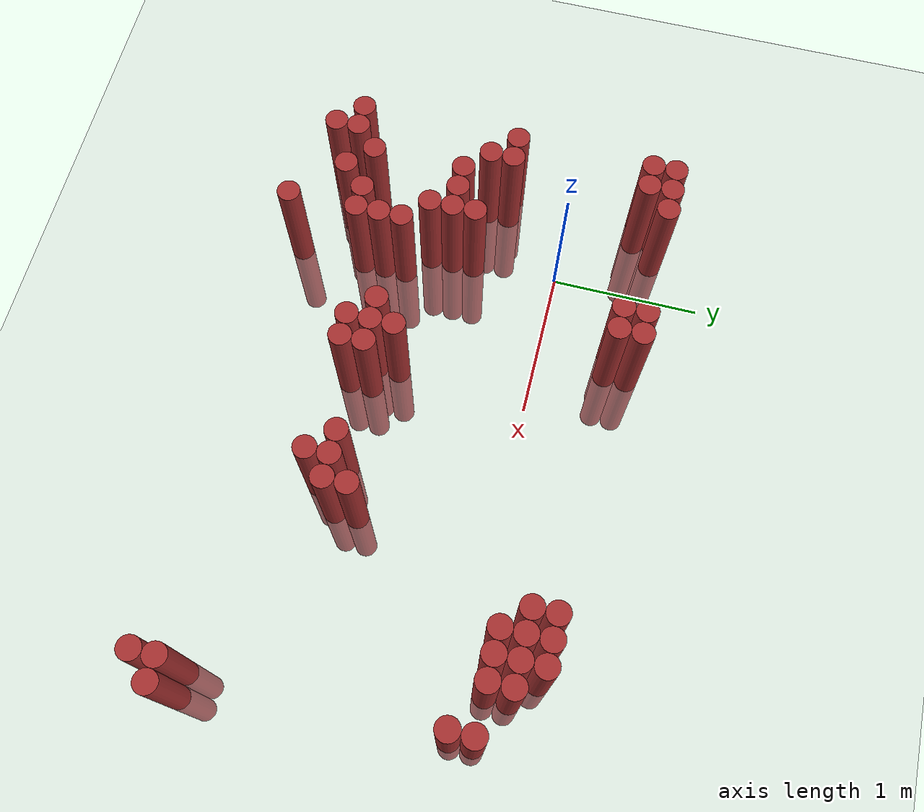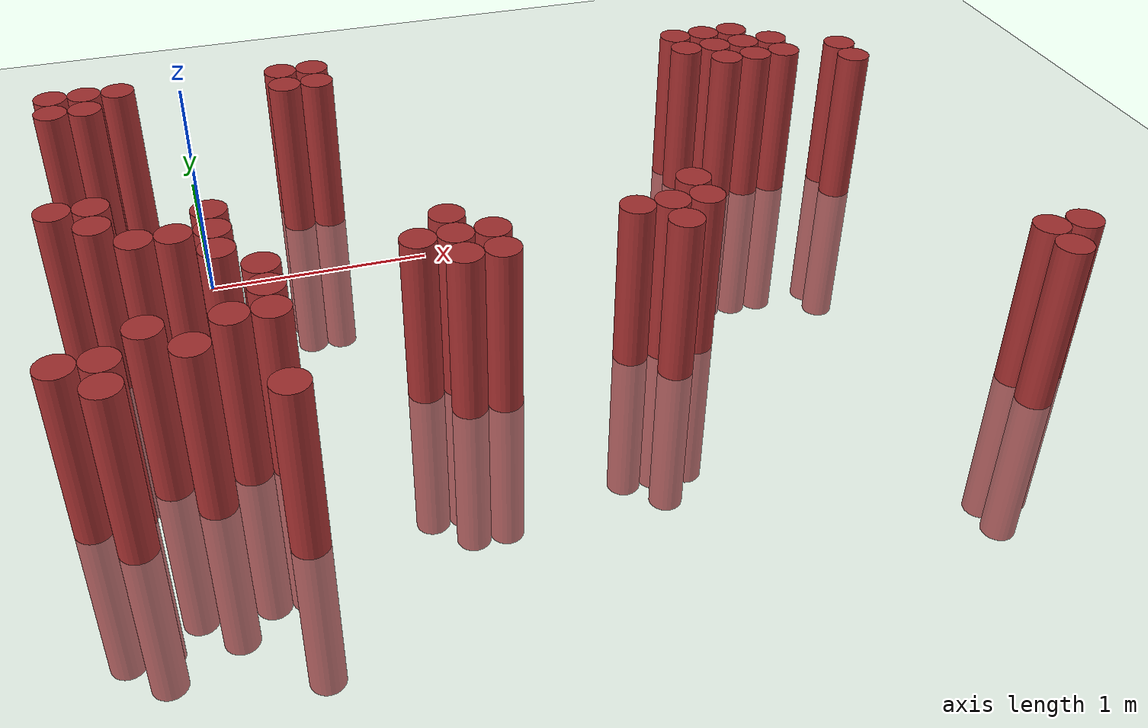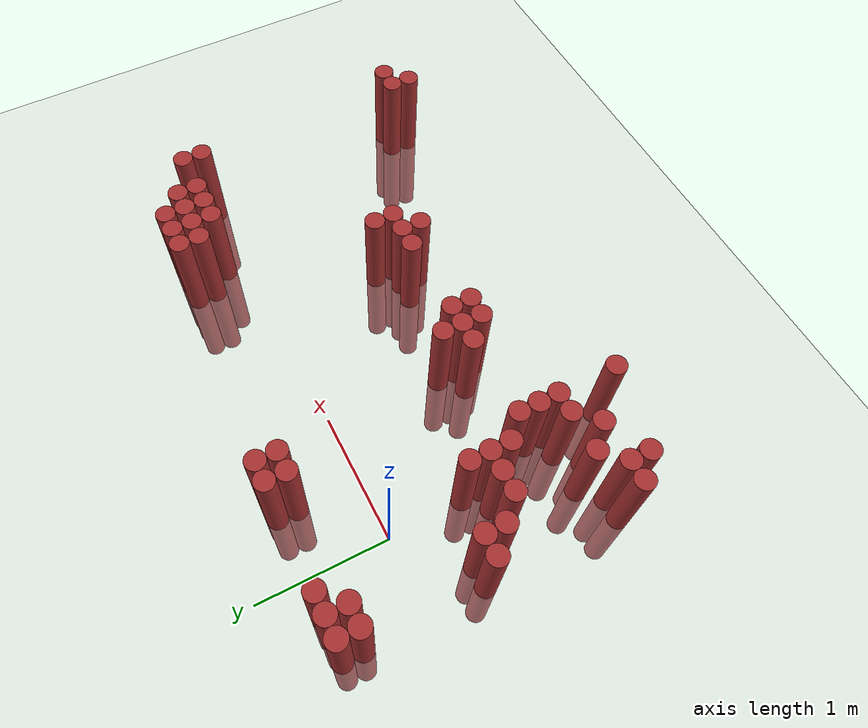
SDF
<sdf version="1.6">
 <world name="default">
  <model name="ground_plane">
   <static>1</static>
   <link name="link">
    <collision name="collision">
     <geometry><plane><normal>0 0 1</normal><size>100 100</size></plane></geometry>
     <surface><friction><ode><mu>100</mu><mu2>50</mu2></ode></friction></surface>
    </collision>
    <visual name="visual">
     <cast_shadows>0</cast_shadows>
     <geometry><plane><normal>0 0 1</normal><size>100 100</size></plane></geometry>
     <material>
      <script><uri>file://media/materials/scripts/gazebo.material</uri><name>Gazebo/Grey</name></script>
     </material>
    </visual>
   </link>
  </model>
  <model name="unit_cylinder_329">
   <static>1</static>
   <pose>-0.575000 -1.475000 0.000000 0.000000 0.000000 0.000000</pose>
   <link name="link">
    <inertial>
     <mass>1</mass>
     <inertia><ixx>0.145833</ixx><ixy>0</ixy><ixz>0</ixz><iyy>0.145833</iyy><iyz>0</iyz><izz>0.125</izz></inertia>
    </inertial>
    <collision name="collision">
     <geometry><cylinder><radius>0.075000</radius><length>1.5</length></cylinder></geometry>
    </collision>
    <visual name="visual">
     <geometry><cylinder><radius>0.075000</radius><length>1.5</length></cylinder></geometry>
     <material>
      <ambient>0.648000 0.192000 0.192000 1</ambient>
      <diffuse>0.648000 0.192000 0.192000 1</diffuse>
     </material>
     <material>
      <script><name>Gazebo/Grey</name><uri>file://media/materials/scripts/gazebo.material</uri></script>
     </material>
    </visual>
   </link>
  </model>
  <model name="unit_cylinder_330">
   <static>1</static>
   <pose>-0.575000 -0.425000 0.000000 0.000000 0.000000 0.000000</pose>
   <link name="link">
    <inertial>
     <mass>1</mass>
     <inertia><ixx>0.145833</ixx><ixy>0</ixy><ixz>0</ixz><iyy>0.145833</iyy><iyz>0</iyz><izz>0.125</izz></inertia>
    </inertial>
    <collision name="collision">
     <geometry><cylinder><radius>0.075000</radius><length>1.5</length></cylinder></geometry>
    </collision>
    <visual name="visual">
     <geometry><cylinder><radius>0.075000</radius><length>1.5</length></cylinder></geometry>
     <material>
      <ambient>0.648000 0.192000 0.192000 1</ambient>
      <diffuse>0.648000 0.192000 0.192000 1</diffuse>
     </material>
     <material>
      <script><name>Gazebo/Grey</name><uri>file://media/materials/scripts/gazebo.material</uri></script>
     </material>
    </visual>
   </link>
  </model>
  <model name="unit_cylinder_331">
   <static>1</static>
   <pose>-0.575000 0.475000 0.000000 0.000000 0.000000 0.000000</pose>
   <link name="link">
    <inertial>
     <mass>1</mass>
     <inertia><ixx>0.145833</ixx><ixy>0</ixy><ixz>0</ixz><iyy>0.145833</iyy><iyz>0</iyz><izz>0.125</izz></inertia>
    </inertial>
    <collision name="collision">
     <geometry><cylinder><radius>0.075000</radius><length>1.5</length></cylinder></geometry>
    </collision>
    <visual name="visual">
     <geometry><cylinder><radius>0.075000</radius><length>1.5</length></cylinder></geometry>
     <material>
      <ambient>0.648000 0.192000 0.192000 1</ambient>
      <diffuse>0.648000 0.192000 0.192000 1</diffuse>
     </material>
     <material>
      <script><name>Gazebo/Grey</name><uri>file://media/materials/scripts/gazebo.material</uri></script>
     </material>
    </visual>
   </link>
  </model>
  <model name="unit_cylinder_332">
   <static>1</static>
   <pose>-0.575000 0.625000 0.000000 0.000000 0.000000 0.000000</pose>
   <link name="link">
    <inertial>
     <mass>1</mass>
     <inertia><ixx>0.145833</ixx><ixy>0</ixy><ixz>0</ixz><iyy>0.145833</iyy><iyz>0</iyz><izz>0.125</izz></inertia>
    </inertial>
    <collision name="collision">
     <geometry><cylinder><radius>0.075000</radius><length>1.5</length></cylinder></geometry>
    </collision>
    <visual name="visual">
     <geometry><cylinder><radius>0.075000</radius><length>1.5</length></cylinder></geometry>
     <material>
      <ambient>0.648000 0.192000 0.192000 1</ambient>
      <diffuse>0.648000 0.192000 0.192000 1</diffuse>
     </material>
     <material>
      <script><name>Gazebo/Grey</name><uri>file://media/materials/scripts/gazebo.material</uri></script>
     </material>
    </visual>
   </link>
  </model>
  <model name="unit_cylinder_337">
   <static>1</static>
   <pose>-0.425000 -1.625000 0.000000 0.000000 0.000000 0.000000</pose>
   <link name="link">
    <inertial>
     <mass>1</mass>
     <inertia><ixx>0.145833</ixx><ixy>0</ixy><ixz>0</ixz><iyy>0.145833</iyy><iyz>0</iyz><izz>0.125</izz></inertia>
    </inertial>
    <collision name="collision">
     <geometry><cylinder><radius>0.075000</radius><length>1.5</length></cylinder></geometry>
    </collision>
    <visual name="visual">
     <geometry><cylinder><radius>0.075000</radius><length>1.5</length></cylinder></geometry>
     <material>
      <ambient>0.648000 0.192000 0.192000 1</ambient>
      <diffuse>0.648000 0.192000 0.192000 1</diffuse>
     </material>
     <material>
      <script><name>Gazebo/Grey</name><uri>file://media/materials/scripts/gazebo.material</uri></script>
     </material>
    </visual>
   </link>
  </model>
  <model name="unit_cylinder_338">
   <static>1</static>
   <pose>-0.425000 -1.475000 0.000000 0.000000 0.000000 0.000000</pose>
   <link name="link">
    <inertial>
     <mass>1</mass>
     <inertia><ixx>0.145833</ixx><ixy>0</ixy><ixz>0</ixz><iyy>0.145833</iyy><iyz>0</iyz><izz>0.125</izz></inertia>
    </inertial>
    <collision name="collision">
     <geometry><cylinder><radius>0.075000</radius><length>1.5</length></cylinder></geometry>
    </collision>
    <visual name="visual">
     <geometry><cylinder><radius>0.075000</radius><length>1.5</length></cylinder></geometry>
     <material>
      <ambient>0.648000 0.192000 0.192000 1</ambient>
      <diffuse>0.648000 0.192000 0.192000 1</diffuse>
     </material>
     <material>
      <script><name>Gazebo/Grey</name><uri>file://media/materials/scripts/gazebo.material</uri></script>
     </material>
    </visual>
   </link>
  </model>
  <model name="unit_cylinder_339">
   <static>1</static>
   <pose>-0.425000 -0.575000 0.000000 0.000000 0.000000 0.000000</pose>
   <link name="link">
    <inertial>
     <mass>1</mass>
     <inertia><ixx>0.145833</ixx><ixy>0</ixy><ixz>0</ixz><iyy>0.145833</iyy><iyz>0</iyz><izz>0.125</izz></inertia>
    </inertial>
    <collision name="collision">
     <geometry><cylinder><radius>0.075000</radius><length>1.5</length></cylinder></geometry>
    </collision>
    <visual name="visual">
     <geometry><cylinder><radius>0.075000</radius><length>1.5</length></cylinder></geometry>
     <material>
      <ambient>0.648000 0.192000 0.192000 1</ambient>
      <diffuse>0.648000 0.192000 0.192000 1</diffuse>
     </material>
     <material>
      <script><name>Gazebo/Grey</name><uri>file://media/materials/scripts/gazebo.material</uri></script>
     </material>
    </visual>
   </link>
  </model>
  <model name="unit_cylinder_340">
   <static>1</static>
   <pose>-0.425000 -0.425000 0.000000 0.000000 0.000000 0.000000</pose>
   <link name="link">
    <inertial>
     <mass>1</mass>
     <inertia><ixx>0.145833</ixx><ixy>0</ixy><ixz>0</ixz><iyy>0.145833</iyy><iyz>0</iyz><izz>0.125</izz></inertia>
    </inertial>
    <collision name="collision">
     <geometry><cylinder><radius>0.075000</radius><length>1.5</length></cylinder></geometry>
    </collision>
    <visual name="visual">
     <geometry><cylinder><radius>0.075000</radius><length>1.5</length></cylinder></geometry>
     <material>
      <ambient>0.648000 0.192000 0.192000 1</ambient>
      <diffuse>0.648000 0.192000 0.192000 1</diffuse>
     </material>
     <material>
      <script><name>Gazebo/Grey</name><uri>file://media/materials/scripts/gazebo.material</uri></script>
     </material>
    </visual>
   </link>
  </model>
  <model name="unit_cylinder_341">
   <static>1</static>
   <pose>-0.425000 0.475000 0.000000 0.000000 0.000000 0.000000</pose>
   <link name="link">
    <inertial>
     <mass>1</mass>
     <inertia><ixx>0.145833</ixx><ixy>0</ixy><ixz>0</ixz><iyy>0.145833</iyy><iyz>0</iyz><izz>0.125</izz></inertia>
    </inertial>
    <collision name="collision">
     <geometry><cylinder><radius>0.075000</radius><length>1.5</length></cylinder></geometry>
    </collision>
    <visual name="visual">
     <geometry><cylinder><radius>0.075000</radius><length>1.5</length></cylinder></geometry>
     <material>
      <ambient>0.648000 0.192000 0.192000 1</ambient>
      <diffuse>0.648000 0.192000 0.192000 1</diffuse>
     </material>
     <material>
      <script><name>Gazebo/Grey</name><uri>file://media/materials/scripts/gazebo.material</uri></script>
     </material>
    </visual>
   </link>
  </model>
  <model name="unit_cylinder_342">
   <static>1</static>
   <pose>-0.425000 0.625000 0.000000 0.000000 0.000000 0.000000</pose>
   <link name="link">
    <inertial>
     <mass>1</mass>
     <inertia><ixx>0.145833</ixx><ixy>0</ixy><ixz>0</ixz><iyy>0.145833</iyy><iyz>0</iyz><izz>0.125</izz></inertia>
    </inertial>
    <collision name="collision">
     <geometry><cylinder><radius>0.075000</radius><length>1.5</length></cylinder></geometry>
    </collision>
    <visual name="visual">
     <geometry><cylinder><radius>0.075000</radius><length>1.5</length></cylinder></geometry>
     <material>
      <ambient>0.648000 0.192000 0.192000 1</ambient>
      <diffuse>0.648000 0.192000 0.192000 1</diffuse>
     </material>
     <material>
      <script><name>Gazebo/Grey</name><uri>file://media/materials/scripts/gazebo.material</uri></script>
     </material>
    </visual>
   </link>
  </model>
  <model name="unit_cylinder_343">
   <static>1</static>
   <pose>-0.275000 -1.325000 0.000000 0.000000 0.000000 0.000000</pose>
   <link name="link">
    <inertial>
     <mass>1</mass>
     <inertia><ixx>0.145833</ixx><ixy>0</ixy><ixz>0</ixz><iyy>0.145833</iyy><iyz>0</iyz><izz>0.125</izz></inertia>
    </inertial>
    <collision name="collision">
     <geometry><cylinder><radius>0.075000</radius><length>1.5</length></cylinder></geometry>
    </collision>
    <visual name="visual">
     <geometry><cylinder><radius>0.075000</radius><length>1.5</length></cylinder></geometry>
     <material>
      <ambient>0.648000 0.192000 0.192000 1</ambient>
      <diffuse>0.648000 0.192000 0.192000 1</diffuse>
     </material>
     <material>
      <script><name>Gazebo/Grey</name><uri>file://media/materials/scripts/gazebo.material</uri></script>
     </material>
    </visual>
   </link>
  </model>
  <model name="unit_cylinder_344">
   <static>1</static>
   <pose>-0.275000 -0.725000 0.000000 0.000000 0.000000 0.000000</pose>
   <link name="link">
    <inertial>
     <mass>1</mass>
     <inertia><ixx>0.145833</ixx><ixy>0</ixy><ixz>0</ixz><iyy>0.145833</iyy><iyz>0</iyz><izz>0.125</izz></inertia>
    </inertial>
    <collision name="collision">
     <geometry><cylinder><radius>0.075000</radius><length>1.5</length></cylinder></geometry>
    </collision>
    <visual name="visual">
     <geometry><cylinder><radius>0.075000</radius><length>1.5</length></cylinder></geometry>
     <material>
      <ambient>0.648000 0.192000 0.192000 1</ambient>
      <diffuse>0.648000 0.192000 0.192000 1</diffuse>
     </material>
     <material>
      <script><name>Gazebo/Grey</name><uri>file://media/materials/scripts/gazebo.material</uri></script>
     </material>
    </visual>
   </link>
  </model>
  <model name="unit_cylinder_345">
   <static>1</static>
   <pose>-0.275000 0.625000 0.000000 0.000000 0.000000 0.000000</pose>
   <link name="link">
    <inertial>
     <mass>1</mass>
     <inertia><ixx>0.145833</ixx><ixy>0</ixy><ixz>0</ixz><iyy>0.145833</iyy><iyz>0</iyz><izz>0.125</izz></inertia>
    </inertial>
    <collision name="collision">
     <geometry><cylinder><radius>0.075000</radius><length>1.5</length></cylinder></geometry>
    </collision>
    <visual name="visual">
     <geometry><cylinder><radius>0.075000</radius><length>1.5</length></cylinder></geometry>
     <material>
      <ambient>0.648000 0.192000 0.192000 1</ambient>
      <diffuse>0.648000 0.192000 0.192000 1</diffuse>
     </material>
     <material>
      <script><name>Gazebo/Grey</name><uri>file://media/materials/scripts/gazebo.material</uri></script>
     </material>
    </visual>
   </link>
  </model>
  <model name="unit_cylinder_347">
   <static>1</static>
   <pose>-0.125000 -1.475000 0.000000 0.000000 0.000000 0.000000</pose>
   <link name="link">
    <inertial>
     <mass>1</mass>
     <inertia><ixx>0.145833</ixx><ixy>0</ixy><ixz>0</ixz><iyy>0.145833</iyy><iyz>0</iyz><izz>0.125</izz></inertia>
    </inertial>
    <collision name="collision">
     <geometry><cylinder><radius>0.075000</radius><length>1.5</length></cylinder></geometry>
    </collision>
    <visual name="visual">
     <geometry><cylinder><radius>0.075000</radius><length>1.5</length></cylinder></geometry>
     <material>
      <ambient>0.648000 0.192000 0.192000 1</ambient>
      <diffuse>0.648000 0.192000 0.192000 1</diffuse>
     </material>
     <material>
      <script><name>Gazebo/Grey</name><uri>file://media/materials/scripts/gazebo.material</uri></script>
     </material>
    </visual>
   </link>
  </model>
  <model name="unit_cylinder_348">
   <static>1</static>
   <pose>-0.125000 -0.725000 0.000000 0.000000 0.000000 0.000000</pose>
   <link name="link">
    <inertial>
     <mass>1</mass>
     <inertia><ixx>0.145833</ixx><ixy>0</ixy><ixz>0</ixz><iyy>0.145833</iyy><iyz>0</iyz><izz>0.125</izz></inertia>
    </inertial>
    <collision name="collision">
     <geometry><cylinder><radius>0.075000</radius><length>1.5</length></cylinder></geometry>
    </collision>
    <visual name="visual">
     <geometry><cylinder><radius>0.075000</radius><length>1.5</length></cylinder></geometry>
     <material>
      <ambient>0.648000 0.192000 0.192000 1</ambient>
      <diffuse>0.648000 0.192000 0.192000 1</diffuse>
     </material>
     <material>
      <script><name>Gazebo/Grey</name><uri>file://media/materials/scripts/gazebo.material</uri></script>
     </material>
    </visual>
   </link>
  </model>
  <model name="unit_cylinder_353">
   <static>1</static>
   <pose>0.025000 -1.325000 0.000000 0.000000 0.000000 0.000000</pose>
   <link name="link">
    <inertial>
     <mass>1</mass>
     <inertia><ixx>0.145833</ixx><ixy>0</ixy><ixz>0</ixz><iyy>0.145833</iyy><iyz>0</iyz><izz>0.125</izz></inertia>
    </inertial>
    <collision name="collision">
     <geometry><cylinder><radius>0.075000</radius><length>1.5</length></cylinder></geometry>
    </collision>
    <visual name="visual">
     <geometry><cylinder><radius>0.075000</radius><length>1.5</length></cylinder></geometry>
     <material>
      <ambient>0.648000 0.192000 0.192000 1</ambient>
      <diffuse>0.648000 0.192000 0.192000 1</diffuse>
     </material>
     <material>
      <script><name>Gazebo/Grey</name><uri>file://media/materials/scripts/gazebo.material</uri></script>
     </material>
    </visual>
   </link>
  </model>
  <model name="unit_cylinder_354">
   <static>1</static>
   <pose>0.025000 -0.875000 0.000000 0.000000 0.000000 0.000000</pose>
   <link name="link">
    <inertial>
     <mass>1</mass>
     <inertia><ixx>0.145833</ixx><ixy>0</ixy><ixz>0</ixz><iyy>0.145833</iyy><iyz>0</iyz><izz>0.125</izz></inertia>
    </inertial>
    <collision name="collision">
     <geometry><cylinder><radius>0.075000</radius><length>1.5</length></cylinder></geometry>
    </collision>
    <visual name="visual">
     <geometry><cylinder><radius>0.075000</radius><length>1.5</length></cylinder></geometry>
     <material>
      <ambient>0.648000 0.192000 0.192000 1</ambient>
      <diffuse>0.648000 0.192000 0.192000 1</diffuse>
     </material>
     <material>
      <script><name>Gazebo/Grey</name><uri>file://media/materials/scripts/gazebo.material</uri></script>
     </material>
    </visual>
   </link>
  </model>
  <model name="unit_cylinder_355">
   <static>1</static>
   <pose>0.025000 -0.725000 0.000000 0.000000 0.000000 0.000000</pose>
   <link name="link">
    <inertial>
     <mass>1</mass>
     <inertia><ixx>0.145833</ixx><ixy>0</ixy><ixz>0</ixz><iyy>0.145833</iyy><iyz>0</iyz><izz>0.125</izz></inertia>
    </inertial>
    <collision name="collision">
     <geometry><cylinder><radius>0.075000</radius><length>1.5</length></cylinder></geometry>
    </collision>
    <visual name="visual">
     <geometry><cylinder><radius>0.075000</radius><length>1.5</length></cylinder></geometry>
     <material>
      <ambient>0.648000 0.192000 0.192000 1</ambient>
      <diffuse>0.648000 0.192000 0.192000 1</diffuse>
     </material>
     <material>
      <script><name>Gazebo/Grey</name><uri>file://media/materials/scripts/gazebo.material</uri></script>
     </material>
    </visual>
   </link>
  </model>
  <model name="unit_cylinder_356">
   <static>1</static>
   <pose>0.025000 -0.575000 0.000000 0.000000 0.000000 0.000000</pose>
   <link name="link">
    <inertial>
     <mass>1</mass>
     <inertia><ixx>0.145833</ixx><ixy>0</ixy><ixz>0</ixz><iyy>0.145833</iyy><iyz>0</iyz><izz>0.125</izz></inertia>
    </inertial>
    <collision name="collision">
     <geometry><cylinder><radius>0.075000</radius><length>1.5</length></cylinder></geometry>
    </collision>
    <visual name="visual">
     <geometry><cylinder><radius>0.075000</radius><length>1.5</length></cylinder></geometry>
     <material>
      <ambient>0.648000 0.192000 0.192000 1</ambient>
      <diffuse>0.648000 0.192000 0.192000 1</diffuse>
     </material>
     <material>
      <script><name>Gazebo/Grey</name><uri>file://media/materials/scripts/gazebo.material</uri></script>
     </material>
    </visual>
   </link>
  </model>
  <model name="unit_cylinder_358">
   <static>1</static>
   <pose>0.175000 -1.775000 0.000000 0.000000 0.000000 0.000000</pose>
   <link name="link">
    <inertial>
     <mass>1</mass>
     <inertia><ixx>0.145833</ixx><ixy>0</ixy><ixz>0</ixz><iyy>0.145833</iyy><iyz>0</iyz><izz>0.125</izz></inertia>
    </inertial>
    <collision name="collision">
     <geometry><cylinder><radius>0.075000</radius><length>1.5</length></cylinder></geometry>
    </collision>
    <visual name="visual">
     <geometry><cylinder><radius>0.075000</radius><length>1.5</length></cylinder></geometry>
     <material>
      <ambient>0.648000 0.192000 0.192000 1</ambient>
      <diffuse>0.648000 0.192000 0.192000 1</diffuse>
     </material>
     <material>
      <script><name>Gazebo/Grey</name><uri>file://media/materials/scripts/gazebo.material</uri></script>
     </material>
    </visual>
   </link>
  </model>
  <model name="unit_cylinder_359">
   <static>1</static>
   <pose>0.175000 -1.325000 0.000000 0.000000 0.000000 0.000000</pose>
   <link name="link">
    <inertial>
     <mass>1</mass>
     <inertia><ixx>0.145833</ixx><ixy>0</ixy><ixz>0</ixz><iyy>0.145833</iyy><iyz>0</iyz><izz>0.125</izz></inertia>
    </inertial>
    <collision name="collision">
     <geometry><cylinder><radius>0.075000</radius><length>1.5</length></cylinder></geometry>
    </collision>
    <visual name="visual">
     <geometry><cylinder><radius>0.075000</radius><length>1.5</length></cylinder></geometry>
     <material>
      <ambient>0.648000 0.192000 0.192000 1</ambient>
      <diffuse>0.648000 0.192000 0.192000 1</diffuse>
     </material>
     <material>
      <script><name>Gazebo/Grey</name><uri>file://media/materials/scripts/gazebo.material</uri></script>
     </material>
    </visual>
   </link>
  </model>
  <model name="unit_cylinder_360">
   <static>1</static>
   <pose>0.175000 -1.175000 0.000000 0.000000 0.000000 0.000000</pose>
   <link name="link">
    <inertial>
     <mass>1</mass>
     <inertia><ixx>0.145833</ixx><ixy>0</ixy><ixz>0</ixz><iyy>0.145833</iyy><iyz>0</iyz><izz>0.125</izz></inertia>
    </inertial>
    <collision name="collision">
     <geometry><cylinder><radius>0.075000</radius><length>1.5</length></cylinder></geometry>
    </collision>
    <visual name="visual">
     <geometry><cylinder><radius>0.075000</radius><length>1.5</length></cylinder></geometry>
     <material>
      <ambient>0.648000 0.192000 0.192000 1</ambient>
      <diffuse>0.648000 0.192000 0.192000 1</diffuse>
     </material>
     <material>
      <script><name>Gazebo/Grey</name><uri>file://media/materials/scripts/gazebo.material</uri></script>
     </material>
    </visual>
   </link>
  </model>
  <model name="unit_cylinder_361">
   <static>1</static>
   <pose>0.175000 -1.025000 0.000000 0.000000 0.000000 0.000000</pose>
   <link name="link">
    <inertial>
     <mass>1</mass>
     <inertia><ixx>0.145833</ixx><ixy>0</ixy><ixz>0</ixz><iyy>0.145833</iyy><iyz>0</iyz><izz>0.125</izz></inertia>
    </inertial>
    <collision name="collision">
     <geometry><cylinder><radius>0.075000</radius><length>1.5</length></cylinder></geometry>
    </collision>
    <visual name="visual">
     <geometry><cylinder><radius>0.075000</radius><length>1.5</length></cylinder></geometry>
     <material>
      <ambient>0.648000 0.192000 0.192000 1</ambient>
      <diffuse>0.648000 0.192000 0.192000 1</diffuse>
     </material>
     <material>
      <script><name>Gazebo/Grey</name><uri>file://media/materials/scripts/gazebo.material</uri></script>
     </material>
    </visual>
   </link>
  </model>
  <model name="unit_cylinder_367">
   <static>1</static>
   <pose>0.475000 0.475000 0.000000 0.000000 0.000000 0.000000</pose>
   <link name="link">
    <inertial>
     <mass>1</mass>
     <inertia><ixx>0.145833</ixx><ixy>0</ixy><ixz>0</ixz><iyy>0.145833</iyy><iyz>0</iyz><izz>0.125</izz></inertia>
    </inertial>
    <collision name="collision">
     <geometry><cylinder><radius>0.075000</radius><length>1.5</length></cylinder></geometry>
    </collision>
    <visual name="visual">
     <geometry><cylinder><radius>0.075000</radius><length>1.5</length></cylinder></geometry>
     <material>
      <ambient>0.648000 0.192000 0.192000 1</ambient>
      <diffuse>0.648000 0.192000 0.192000 1</diffuse>
     </material>
     <material>
      <script><name>Gazebo/Grey</name><uri>file://media/materials/scripts/gazebo.material</uri></script>
     </material>
    </visual>
   </link>
  </model>
  <model name="unit_cylinder_368">
   <static>1</static>
   <pose>0.475000 0.625000 0.000000 0.000000 0.000000 0.000000</pose>
   <link name="link">
    <inertial>
     <mass>1</mass>
     <inertia><ixx>0.145833</ixx><ixy>0</ixy><ixz>0</ixz><iyy>0.145833</iyy><iyz>0</iyz><izz>0.125</izz></inertia>
    </inertial>
    <collision name="collision">
     <geometry><cylinder><radius>0.075000</radius><length>1.5</length></cylinder></geometry>
    </collision>
    <visual name="visual">
     <geometry><cylinder><radius>0.075000</radius><length>1.5</length></cylinder></geometry>
     <material>
      <ambient>0.648000 0.192000 0.192000 1</ambient>
      <diffuse>0.648000 0.192000 0.192000 1</diffuse>
     </material>
     <material>
      <script><name>Gazebo/Grey</name><uri>file://media/materials/scripts/gazebo.material</uri></script>
     </material>
    </visual>
   </link>
  </model>
  <model name="unit_cylinder_374">
   <static>1</static>
   <pose>0.625000 0.475000 0.000000 0.000000 0.000000 0.000000</pose>
   <link name="link">
    <inertial>
     <mass>1</mass>
     <inertia><ixx>0.145833</ixx><ixy>0</ixy><ixz>0</ixz><iyy>0.145833</iyy><iyz>0</iyz><izz>0.125</izz></inertia>
    </inertial>
    <collision name="collision">
     <geometry><cylinder><radius>0.075000</radius><length>1.5</length></cylinder></geometry>
    </collision>
    <visual name="visual">
     <geometry><cylinder><radius>0.075000</radius><length>1.5</length></cylinder></geometry>
     <material>
      <ambient>0.648000 0.192000 0.192000 1</ambient>
      <diffuse>0.648000 0.192000 0.192000 1</diffuse>
     </material>
     <material>
      <script><name>Gazebo/Grey</name><uri>file://media/materials/scripts/gazebo.material</uri></script>
     </material>
    </visual>
   </link>
  </model>
  <model name="unit_cylinder_375">
   <static>1</static>
   <pose>0.625000 0.625000 0.000000 0.000000 0.000000 0.000000</pose>
   <link name="link">
    <inertial>
     <mass>1</mass>
     <inertia><ixx>0.145833</ixx><ixy>0</ixy><ixz>0</ixz><iyy>0.145833</iyy><iyz>0</iyz><izz>0.125</izz></inertia>
    </inertial>
    <collision name="collision">
     <geometry><cylinder><radius>0.075000</radius><length>1.5</length></cylinder></geometry>
    </collision>
    <visual name="visual">
     <geometry><cylinder><radius>0.075000</radius><length>1.5</length></cylinder></geometry>
     <material>
      <ambient>0.648000 0.192000 0.192000 1</ambient>
      <diffuse>0.648000 0.192000 0.192000 1</diffuse>
     </material>
     <material>
      <script><name>Gazebo/Grey</name><uri>file://media/materials/scripts/gazebo.material</uri></script>
     </material>
    </visual>
   </link>
  </model>
  <model name="unit_cylinder_379">
   <static>1</static>
   <pose>0.775000 -1.025000 0.000000 0.000000 0.000000 0.000000</pose>
   <link name="link">
    <inertial>
     <mass>1</mass>
     <inertia><ixx>0.145833</ixx><ixy>0</ixy><ixz>0</ixz><iyy>0.145833</iyy><iyz>0</iyz><izz>0.125</izz></inertia>
    </inertial>
    <collision name="collision">
     <geometry><cylinder><radius>0.075000</radius><length>1.5</length></cylinder></geometry>
    </collision>
    <visual name="visual">
     <geometry><cylinder><radius>0.075000</radius><length>1.5</length></cylinder></geometry>
     <material>
      <ambient>0.648000 0.192000 0.192000 1</ambient>
      <diffuse>0.648000 0.192000 0.192000 1</diffuse>
     </material>
     <material>
      <script><name>Gazebo/Grey</name><uri>file://media/materials/scripts/gazebo.material</uri></script>
     </material>
    </visual>
   </link>
  </model>
  <model name="unit_cylinder_384">
   <static>1</static>
   <pose>0.925000 -1.175000 0.000000 0.000000 0.000000 0.000000</pose>
   <link name="link">
    <inertial>
     <mass>1</mass>
     <inertia><ixx>0.145833</ixx><ixy>0</ixy><ixz>0</ixz><iyy>0.145833</iyy><iyz>0</iyz><izz>0.125</izz></inertia>
    </inertial>
    <collision name="collision">
     <geometry><cylinder><radius>0.075000</radius><length>1.5</length></cylinder></geometry>
    </collision>
    <visual name="visual">
     <geometry><cylinder><radius>0.075000</radius><length>1.5</length></cylinder></geometry>
     <material>
      <ambient>0.648000 0.192000 0.192000 1</ambient>
      <diffuse>0.648000 0.192000 0.192000 1</diffuse>
     </material>
     <material>
      <script><name>Gazebo/Grey</name><uri>file://media/materials/scripts/gazebo.material</uri></script>
     </material>
    </visual>
   </link>
  </model>
  <model name="unit_cylinder_385">
   <static>1</static>
   <pose>0.925000 -1.025000 0.000000 0.000000 0.000000 0.000000</pose>
   <link name="link">
    <inertial>
     <mass>1</mass>
     <inertia><ixx>0.145833</ixx><ixy>0</ixy><ixz>0</ixz><iyy>0.145833</iyy><iyz>0</iyz><izz>0.125</izz></inertia>
    </inertial>
    <collision name="collision">
     <geometry><cylinder><radius>0.075000</radius><length>1.5</length></cylinder></geometry>
    </collision>
    <visual name="visual">
     <geometry><cylinder><radius>0.075000</radius><length>1.5</length></cylinder></geometry>
     <material>
      <ambient>0.648000 0.192000 0.192000 1</ambient>
      <diffuse>0.648000 0.192000 0.192000 1</diffuse>
     </material>
     <material>
      <script><name>Gazebo/Grey</name><uri>file://media/materials/scripts/gazebo.material</uri></script>
     </material>
    </visual>
   </link>
  </model>
  <model name="unit_cylinder_386">
   <static>1</static>
   <pose>0.925000 -0.875000 0.000000 0.000000 0.000000 0.000000</pose>
   <link name="link">
    <inertial>
     <mass>1</mass>
     <inertia><ixx>0.145833</ixx><ixy>0</ixy><ixz>0</ixz><iyy>0.145833</iyy><iyz>0</iyz><izz>0.125</izz></inertia>
    </inertial>
    <collision name="collision">
     <geometry><cylinder><radius>0.075000</radius><length>1.5</length></cylinder></geometry>
    </collision>
    <visual name="visual">
     <geometry><cylinder><radius>0.075000</radius><length>1.5</length></cylinder></geometry>
     <material>
      <ambient>0.648000 0.192000 0.192000 1</ambient>
      <diffuse>0.648000 0.192000 0.192000 1</diffuse>
     </material>
     <material>
      <script><name>Gazebo/Grey</name><uri>file://media/materials/scripts/gazebo.material</uri></script>
     </material>
    </visual>
   </link>
  </model>
  <model name="unit_cylinder_393">
   <static>1</static>
   <pose>1.075000 -1.175000 0.000000 0.000000 0.000000 0.000000</pose>
   <link name="link">
    <inertial>
     <mass>1</mass>
     <inertia><ixx>0.145833</ixx><ixy>0</ixy><ixz>0</ixz><iyy>0.145833</iyy><iyz>0</iyz><izz>0.125</izz></inertia>
    </inertial>
    <collision name="collision">
     <geometry><cylinder><radius>0.075000</radius><length>1.5</length></cylinder></geometry>
    </collision>
    <visual name="visual">
     <geometry><cylinder><radius>0.075000</radius><length>1.5</length></cylinder></geometry>
     <material>
      <ambient>0.648000 0.192000 0.192000 1</ambient>
      <diffuse>0.648000 0.192000 0.192000 1</diffuse>
     </material>
     <material>
      <script><name>Gazebo/Grey</name><uri>file://media/materials/scripts/gazebo.material</uri></script>
     </material>
    </visual>
   </link>
  </model>
  <model name="unit_cylinder_394">
   <static>1</static>
   <pose>1.075000 -1.025000 0.000000 0.000000 0.000000 0.000000</pose>
   <link name="link">
    <inertial>
     <mass>1</mass>
     <inertia><ixx>0.145833</ixx><ixy>0</ixy><ixz>0</ixz><iyy>0.145833</iyy><iyz>0</iyz><izz>0.125</izz></inertia>
    </inertial>
    <collision name="collision">
     <geometry><cylinder><radius>0.075000</radius><length>1.5</length></cylinder></geometry>
    </collision>
    <visual name="visual">
     <geometry><cylinder><radius>0.075000</radius><length>1.5</length></cylinder></geometry>
     <material>
      <ambient>0.648000 0.192000 0.192000 1</ambient>
      <diffuse>0.648000 0.192000 0.192000 1</diffuse>
     </material>
     <material>
      <script><name>Gazebo/Grey</name><uri>file://media/materials/scripts/gazebo.material</uri></script>
     </material>
    </visual>
   </link>
  </model>
  <model name="unit_cylinder_408">
   <static>1</static>
   <pose>1.675000 -1.025000 0.000000 0.000000 0.000000 0.000000</pose>
   <link name="link">
    <inertial>
     <mass>1</mass>
     <inertia><ixx>0.145833</ixx><ixy>0</ixy><ixz>0</ixz><iyy>0.145833</iyy><iyz>0</iyz><izz>0.125</izz></inertia>
    </inertial>
    <collision name="collision">
     <geometry><cylinder><radius>0.075000</radius><length>1.5</length></cylinder></geometry>
    </collision>
    <visual name="visual">
     <geometry><cylinder><radius>0.075000</radius><length>1.5</length></cylinder></geometry>
     <material>
      <ambient>0.648000 0.192000 0.192000 1</ambient>
      <diffuse>0.648000 0.192000 0.192000 1</diffuse>
     </material>
     <material>
      <script><name>Gazebo/Grey</name><uri>file://media/materials/scripts/gazebo.material</uri></script>
     </material>
    </visual>
   </link>
  </model>
  <model name="unit_cylinder_409">
   <static>1</static>
   <pose>1.825000 -1.175000 0.000000 0.000000 0.000000 0.000000</pose>
   <link name="link">
    <inertial>
     <mass>1</mass>
     <inertia><ixx>0.145833</ixx><ixy>0</ixy><ixz>0</ixz><iyy>0.145833</iyy><iyz>0</iyz><izz>0.125</izz></inertia>
    </inertial>
    <collision name="collision">
     <geometry><cylinder><radius>0.075000</radius><length>1.5</length></cylinder></geometry>
    </collision>
    <visual name="visual">
     <geometry><cylinder><radius>0.075000</radius><length>1.5</length></cylinder></geometry>
     <material>
      <ambient>0.648000 0.192000 0.192000 1</ambient>
      <diffuse>0.648000 0.192000 0.192000 1</diffuse>
     </material>
     <material>
      <script><name>Gazebo/Grey</name><uri>file://media/materials/scripts/gazebo.material</uri></script>
     </material>
    </visual>
   </link>
  </model>
  <model name="unit_cylinder_410">
   <static>1</static>
   <pose>1.825000 -1.025000 0.000000 0.000000 0.000000 0.000000</pose>
   <link name="link">
    <inertial>
     <mass>1</mass>
     <inertia><ixx>0.145833</ixx><ixy>0</ixy><ixz>0</ixz><iyy>0.145833</iyy><iyz>0</iyz><izz>0.125</izz></inertia>
    </inertial>
    <collision name="collision">
     <geometry><cylinder><radius>0.075000</radius><length>1.5</length></cylinder></geometry>
    </collision>
    <visual name="visual">
     <geometry><cylinder><radius>0.075000</radius><length>1.5</length></cylinder></geometry>
     <material>
      <ambient>0.648000 0.192000 0.192000 1</ambient>
      <diffuse>0.648000 0.192000 0.192000 1</diffuse>
     </material>
     <material>
      <script><name>Gazebo/Grey</name><uri>file://media/materials/scripts/gazebo.material</uri></script>
     </material>
    </visual>
   </link>
  </model>
  <model name="unit_cylinder_413">
   <static>1</static>
   <pose>1.975000 -1.025000 0.000000 0.000000 0.000000 0.000000</pose>
   <link name="link">
    <inertial>
     <mass>1</mass>
     <inertia><ixx>0.145833</ixx><ixy>0</ixy><ixz>0</ixz><iyy>0.145833</iyy><iyz>0</iyz><izz>0.125</izz></inertia>
    </inertial>
    <collision name="collision">
     <geometry><cylinder><radius>0.075000</radius><length>1.5</length></cylinder></geometry>
    </collision>
    <visual name="visual">
     <geometry><cylinder><radius>0.075000</radius><length>1.5</length></cylinder></geometry>
     <material>
      <ambient>0.648000 0.192000 0.192000 1</ambient>
      <diffuse>0.648000 0.192000 0.192000 1</diffuse>
     </material>
     <material>
      <script><name>Gazebo/Grey</name><uri>file://media/materials/scripts/gazebo.material</uri></script>
     </material>
    </visual>
   </link>
  </model>
  <model name="unit_cylinder_414">
   <static>1</static>
   <pose>1.975000 -0.875000 0.000000 0.000000 0.000000 0.000000</pose>
   <link name="link">
    <inertial>
     <mass>1</mass>
     <inertia><ixx>0.145833</ixx><ixy>0</ixy><ixz>0</ixz><iyy>0.145833</iyy><iyz>0</iyz><izz>0.125</izz></inertia>
    </inertial>
    <collision name="collision">
     <geometry><cylinder><radius>0.075000</radius><length>1.5</length></cylinder></geometry>
    </collision>
    <visual name="visual">
     <geometry><cylinder><radius>0.075000</radius><length>1.5</length></cylinder></geometry>
     <material>
      <ambient>0.648000 0.192000 0.192000 1</ambient>
      <diffuse>0.648000 0.192000 0.192000 1</diffuse>
     </material>
     <material>
      <script><name>Gazebo/Grey</name><uri>file://media/materials/scripts/gazebo.material</uri></script>
     </material>
    </visual>
   </link>
  </model>
  <model name="unit_cylinder_421">
   <static>1</static>
   <pose>2.425000 0.325000 0.000000 0.000000 0.000000 0.000000</pose>
   <link name="link">
    <inertial>
     <mass>1</mass>
     <inertia><ixx>0.145833</ixx><ixy>0</ixy><ixz>0</ixz><iyy>0.145833</iyy><iyz>0</iyz><izz>0.125</izz></inertia>
    </inertial>
    <collision name="collision">
     <geometry><cylinder><radius>0.075000</radius><length>1.5</length></cylinder></geometry>
    </collision>
    <visual name="visual">
     <geometry><cylinder><radius>0.075000</radius><length>1.5</length></cylinder></geometry>
     <material>
      <ambient>0.648000 0.192000 0.192000 1</ambient>
      <diffuse>0.648000 0.192000 0.192000 1</diffuse>
     </material>
     <material>
      <script><name>Gazebo/Grey</name><uri>file://media/materials/scripts/gazebo.material</uri></script>
     </material>
    </visual>
   </link>
  </model>
  <model name="unit_cylinder_422">
   <static>1</static>
   <pose>2.425000 0.475000 0.000000 0.000000 0.000000 0.000000</pose>
   <link name="link">
    <inertial>
     <mass>1</mass>
     <inertia><ixx>0.145833</ixx><ixy>0</ixy><ixz>0</ixz><iyy>0.145833</iyy><iyz>0</iyz><izz>0.125</izz></inertia>
    </inertial>
    <collision name="collision">
     <geometry><cylinder><radius>0.075000</radius><length>1.5</length></cylinder></geometry>
    </collision>
    <visual name="visual">
     <geometry><cylinder><radius>0.075000</radius><length>1.5</length></cylinder></geometry>
     <material>
      <ambient>0.648000 0.192000 0.192000 1</ambient>
      <diffuse>0.648000 0.192000 0.192000 1</diffuse>
     </material>
     <material>
      <script><name>Gazebo/Grey</name><uri>file://media/materials/scripts/gazebo.material</uri></script>
     </material>
    </visual>
   </link>
  </model>
  <model name="unit_cylinder_426">
   <static>1</static>
   <pose>2.575000 0.175000 0.000000 0.000000 0.000000 0.000000</pose>
   <link name="link">
    <inertial>
     <mass>1</mass>
     <inertia><ixx>0.145833</ixx><ixy>0</ixy><ixz>0</ixz><iyy>0.145833</iyy><iyz>0</iyz><izz>0.125</izz></inertia>
    </inertial>
    <collision name="collision">
     <geometry><cylinder><radius>0.075000</radius><length>1.5</length></cylinder></geometry>
    </collision>
    <visual name="visual">
     <geometry><cylinder><radius>0.075000</radius><length>1.5</length></cylinder></geometry>
     <material>
      <ambient>0.648000 0.192000 0.192000 1</ambient>
      <diffuse>0.648000 0.192000 0.192000 1</diffuse>
     </material>
     <material>
      <script><name>Gazebo/Grey</name><uri>file://media/materials/scripts/gazebo.material</uri></script>
     </material>
    </visual>
   </link>
  </model>
  <model name="unit_cylinder_427">
   <static>1</static>
   <pose>2.575000 0.325000 0.000000 0.000000 0.000000 0.000000</pose>
   <link name="link">
    <inertial>
     <mass>1</mass>
     <inertia><ixx>0.145833</ixx><ixy>0</ixy><ixz>0</ixz><iyy>0.145833</iyy><iyz>0</iyz><izz>0.125</izz></inertia>
    </inertial>
    <collision name="collision">
     <geometry><cylinder><radius>0.075000</radius><length>1.5</length></cylinder></geometry>
    </collision>
    <visual name="visual">
     <geometry><cylinder><radius>0.075000</radius><length>1.5</length></cylinder></geometry>
     <material>
      <ambient>0.648000 0.192000 0.192000 1</ambient>
      <diffuse>0.648000 0.192000 0.192000 1</diffuse>
     </material>
     <material>
      <script><name>Gazebo/Grey</name><uri>file://media/materials/scripts/gazebo.material</uri></script>
     </material>
    </visual>
   </link>
  </model>
  <model name="unit_cylinder_428">
   <static>1</static>
   <pose>2.575000 0.475000 0.000000 0.000000 0.000000 0.000000</pose>
   <link name="link">
    <inertial>
     <mass>1</mass>
     <inertia><ixx>0.145833</ixx><ixy>0</ixy><ixz>0</ixz><iyy>0.145833</iyy><iyz>0</iyz><izz>0.125</izz></inertia>
    </inertial>
    <collision name="collision">
     <geometry><cylinder><radius>0.075000</radius><length>1.5</length></cylinder></geometry>
    </collision>
    <visual name="visual">
     <geometry><cylinder><radius>0.075000</radius><length>1.5</length></cylinder></geometry>
     <material>
      <ambient>0.648000 0.192000 0.192000 1</ambient>
      <diffuse>0.648000 0.192000 0.192000 1</diffuse>
     </material>
     <material>
      <script><name>Gazebo/Grey</name><uri>file://media/materials/scripts/gazebo.material</uri></script>
     </material>
    </visual>
   </link>
  </model>
  <model name="unit_cylinder_430">
   <static>1</static>
   <pose>2.725000 0.175000 0.000000 0.000000 0.000000 0.000000</pose>
   <link name="link">
    <inertial>
     <mass>1</mass>
     <inertia><ixx>0.145833</ixx><ixy>0</ixy><ixz>0</ixz><iyy>0.145833</iyy><iyz>0</iyz><izz>0.125</izz></inertia>
    </inertial>
    <collision name="collision">
     <geometry><cylinder><radius>0.075000</radius><length>1.5</length></cylinder></geometry>
    </collision>
    <visual name="visual">
     <geometry><cylinder><radius>0.075000</radius><length>1.5</length></cylinder></geometry>
     <material>
      <ambient>0.648000 0.192000 0.192000 1</ambient>
      <diffuse>0.648000 0.192000 0.192000 1</diffuse>
     </material>
     <material>
      <script><name>Gazebo/Grey</name><uri>file://media/materials/scripts/gazebo.material</uri></script>
     </material>
    </visual>
   </link>
  </model>
  <model name="unit_cylinder_431">
   <static>1</static>
   <pose>2.725000 0.325000 0.000000 0.000000 0.000000 0.000000</pose>
   <link name="link">
    <inertial>
     <mass>1</mass>
     <inertia><ixx>0.145833</ixx><ixy>0</ixy><ixz>0</ixz><iyy>0.145833</iyy><iyz>0</iyz><izz>0.125</izz></inertia>
    </inertial>
    <collision name="collision">
     <geometry><cylinder><radius>0.075000</radius><length>1.5</length></cylinder></geometry>
    </collision>
    <visual name="visual">
     <geometry><cylinder><radius>0.075000</radius><length>1.5</length></cylinder></geometry>
     <material>
      <ambient>0.648000 0.192000 0.192000 1</ambient>
      <diffuse>0.648000 0.192000 0.192000 1</diffuse>
     </material>
     <material>
      <script><name>Gazebo/Grey</name><uri>file://media/materials/scripts/gazebo.material</uri></script>
     </material>
    </visual>
   </link>
  </model>
  <model name="unit_cylinder_432">
   <static>1</static>
   <pose>2.725000 0.475000 0.000000 0.000000 0.000000 0.000000</pose>
   <link name="link">
    <inertial>
     <mass>1</mass>
     <inertia><ixx>0.145833</ixx><ixy>0</ixy><ixz>0</ixz><iyy>0.145833</iyy><iyz>0</iyz><izz>0.125</izz></inertia>
    </inertial>
    <collision name="collision">
     <geometry><cylinder><radius>0.075000</radius><length>1.5</length></cylinder></geometry>
    </collision>
    <visual name="visual">
     <geometry><cylinder><radius>0.075000</radius><length>1.5</length></cylinder></geometry>
     <material>
      <ambient>0.648000 0.192000 0.192000 1</ambient>
      <diffuse>0.648000 0.192000 0.192000 1</diffuse>
     </material>
     <material>
      <script><name>Gazebo/Grey</name><uri>file://media/materials/scripts/gazebo.material</uri></script>
     </material>
    </visual>
   </link>
  </model>
  <model name="unit_cylinder_434">
   <static>1</static>
   <pose>2.875000 0.175000 0.000000 0.000000 0.000000 0.000000</pose>
   <link name="link">
    <inertial>
     <mass>1</mass>
     <inertia><ixx>0.145833</ixx><ixy>0</ixy><ixz>0</ixz><iyy>0.145833</iyy><iyz>0</iyz><izz>0.125</izz></inertia>
    </inertial>
    <collision name="collision">
     <geometry><cylinder><radius>0.075000</radius><length>1.5</length></cylinder></geometry>
    </collision>
    <visual name="visual">
     <geometry><cylinder><radius>0.075000</radius><length>1.5</length></cylinder></geometry>
     <material>
      <ambient>0.648000 0.192000 0.192000 1</ambient>
      <diffuse>0.648000 0.192000 0.192000 1</diffuse>
     </material>
     <material>
      <script><name>Gazebo/Grey</name><uri>file://media/materials/scripts/gazebo.material</uri></script>
     </material>
    </visual>
   </link>
  </model>
  <model name="unit_cylinder_435">
   <static>1</static>
   <pose>2.875000 0.325000 0.000000 0.000000 0.000000 0.000000</pose>
   <link name="link">
    <inertial>
     <mass>1</mass>
     <inertia><ixx>0.145833</ixx><ixy>0</ixy><ixz>0</ixz><iyy>0.145833</iyy><iyz>0</iyz><izz>0.125</izz></inertia>
    </inertial>
    <collision name="collision">
     <geometry><cylinder><radius>0.075000</radius><length>1.5</length></cylinder></geometry>
    </collision>
    <visual name="visual">
     <geometry><cylinder><radius>0.075000</radius><length>1.5</length></cylinder></geometry>
     <material>
      <ambient>0.648000 0.192000 0.192000 1</ambient>
      <diffuse>0.648000 0.192000 0.192000 1</diffuse>
     </material>
     <material>
      <script><name>Gazebo/Grey</name><uri>file://media/materials/scripts/gazebo.material</uri></script>
     </material>
    </visual>
   </link>
  </model>
  <model name="unit_cylinder_445">
   <static>1</static>
   <pose>3.175000 -1.775000 0.000000 0.000000 0.000000 0.000000</pose>
   <link name="link">
    <inertial>
     <mass>1</mass>
     <inertia><ixx>0.145833</ixx><ixy>0</ixy><ixz>0</ixz><iyy>0.145833</iyy><iyz>0</iyz><izz>0.125</izz></inertia>
    </inertial>
    <collision name="collision">
     <geometry><cylinder><radius>0.075000</radius><length>1.5</length></cylinder></geometry>
    </collision>
    <visual name="visual">
     <geometry><cylinder><radius>0.075000</radius><length>1.5</length></cylinder></geometry>
     <material>
      <ambient>0.648000 0.192000 0.192000 1</ambient>
      <diffuse>0.648000 0.192000 0.192000 1</diffuse>
     </material>
     <material>
      <script><name>Gazebo/Grey</name><uri>file://media/materials/scripts/gazebo.material</uri></script>
     </material>
    </visual>
   </link>
  </model>
  <model name="unit_cylinder_446">
   <static>1</static>
   <pose>3.175000 -1.625000 0.000000 0.000000 0.000000 0.000000</pose>
   <link name="link">
    <inertial>
     <mass>1</mass>
     <inertia><ixx>0.145833</ixx><ixy>0</ixy><ixz>0</ixz><iyy>0.145833</iyy><iyz>0</iyz><izz>0.125</izz></inertia>
    </inertial>
    <collision name="collision">
     <geometry><cylinder><radius>0.075000</radius><length>1.5</length></cylinder></geometry>
    </collision>
    <visual name="visual">
     <geometry><cylinder><radius>0.075000</radius><length>1.5</length></cylinder></geometry>
     <material>
      <ambient>0.648000 0.192000 0.192000 1</ambient>
      <diffuse>0.648000 0.192000 0.192000 1</diffuse>
     </material>
     <material>
      <script><name>Gazebo/Grey</name><uri>file://media/materials/scripts/gazebo.material</uri></script>
     </material>
    </visual>
   </link>
  </model>
  <model name="unit_cylinder_447">
   <static>1</static>
   <pose>3.175000 0.025000 0.000000 0.000000 0.000000 0.000000</pose>
   <link name="link">
    <inertial>
     <mass>1</mass>
     <inertia><ixx>0.145833</ixx><ixy>0</ixy><ixz>0</ixz><iyy>0.145833</iyy><iyz>0</iyz><izz>0.125</izz></inertia>
    </inertial>
    <collision name="collision">
     <geometry><cylinder><radius>0.075000</radius><length>1.5</length></cylinder></geometry>
    </collision>
    <visual name="visual">
     <geometry><cylinder><radius>0.075000</radius><length>1.5</length></cylinder></geometry>
     <material>
      <ambient>0.648000 0.192000 0.192000 1</ambient>
      <diffuse>0.648000 0.192000 0.192000 1</diffuse>
     </material>
     <material>
      <script><name>Gazebo/Grey</name><uri>file://media/materials/scripts/gazebo.material</uri></script>
     </material>
    </visual>
   </link>
  </model>
  <model name="unit_cylinder_448">
   <static>1</static>
   <pose>3.175000 0.175000 0.000000 0.000000 0.000000 0.000000</pose>
   <link name="link">
    <inertial>
     <mass>1</mass>
     <inertia><ixx>0.145833</ixx><ixy>0</ixy><ixz>0</ixz><iyy>0.145833</iyy><iyz>0</iyz><izz>0.125</izz></inertia>
    </inertial>
    <collision name="collision">
     <geometry><cylinder><radius>0.075000</radius><length>1.5</length></cylinder></geometry>
    </collision>
    <visual name="visual">
     <geometry><cylinder><radius>0.075000</radius><length>1.5</length></cylinder></geometry>
     <material>
      <ambient>0.648000 0.192000 0.192000 1</ambient>
      <diffuse>0.648000 0.192000 0.192000 1</diffuse>
     </material>
     <material>
      <script><name>Gazebo/Grey</name><uri>file://media/materials/scripts/gazebo.material</uri></script>
     </material>
    </visual>
   </link>
  </model>
  <model name="unit_cylinder_450">
   <static>1</static>
   <pose>3.325000 -1.625000 0.000000 0.000000 0.000000 0.000000</pose>
   <link name="link">
    <inertial>
     <mass>1</mass>
     <inertia><ixx>0.145833</ixx><ixy>0</ixy><ixz>0</ixz><iyy>0.145833</iyy><iyz>0</iyz><izz>0.125</izz></inertia>
    </inertial>
    <collision name="collision">
     <geometry><cylinder><radius>0.075000</radius><length>1.5</length></cylinder></geometry>
    </collision>
    <visual name="visual">
     <geometry><cylinder><radius>0.075000</radius><length>1.5</length></cylinder></geometry>
     <material>
      <ambient>0.648000 0.192000 0.192000 1</ambient>
      <diffuse>0.648000 0.192000 0.192000 1</diffuse>
     </material>
     <material>
      <script><name>Gazebo/Grey</name><uri>file://media/materials/scripts/gazebo.material</uri></script>
     </material>
    </visual>
   </link>
  </model>
 </world>
</sdf>
